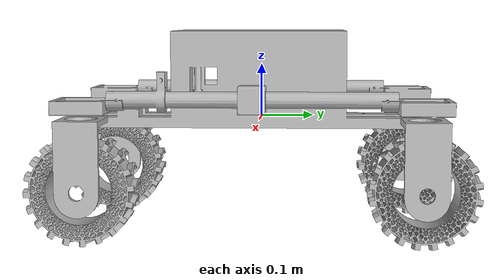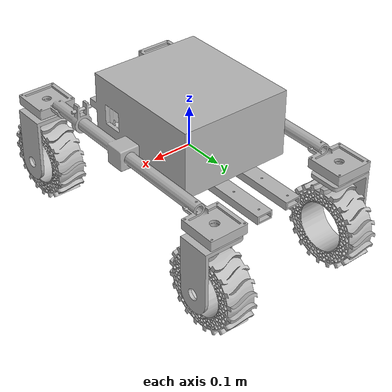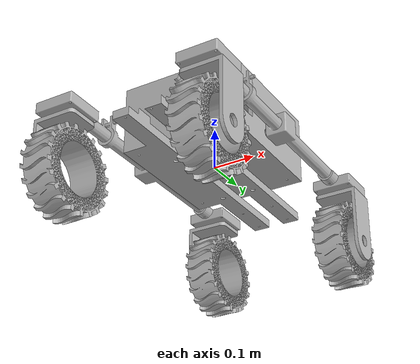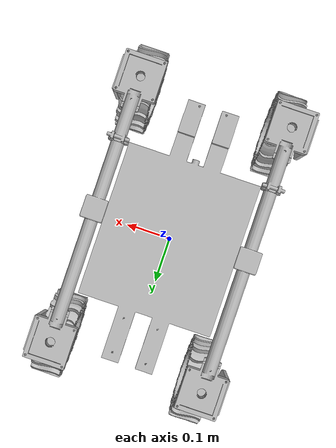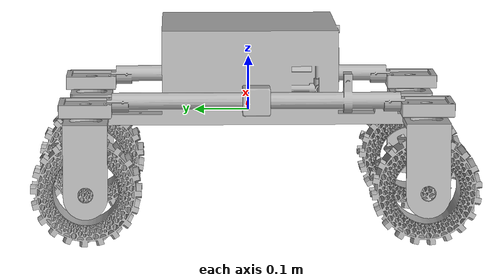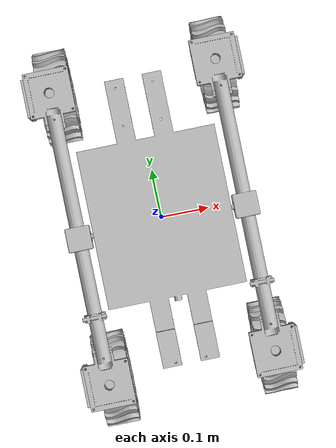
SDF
<sdf version='1.7'>
  <model name='robot_mk2'>
    <link name='base_link'>
      <inertial>
        <pose>-1e-06 -0.01155 0.053193 0 -0 0</pose>
        <mass>5.35852</mass>
        <inertia>
          <ixx>0.0719018</ixx>
          <ixy>-1.24143e-05</ixy>
          <ixz>8.05932e-09</ixz>
          <iyy>0.0809954</iyy>
          <iyz>-6.26768e-07</iyz>
          <izz>0.137156</izz>
        </inertia>
      </inertial>
      <collision name='base_link_collision'>
        <pose>0 0 0 0 -0 0</pose>
        <geometry>
          <mesh>
            <scale>1 1 1</scale>
            <uri>model://rovermk2_description/meshes/base_link.STL</uri>
          </mesh>
        </geometry>
      </collision>
      <collision name='base_link_fixed_joint_lump__suspension_left_collision_1'>
        <pose>-0.175 -0.1 0.043 0 0 -1.5708</pose>
        <geometry>
          <mesh>
            <scale>1 1 1</scale>
            <uri>model://rovermk2_description/meshes/suspension_1.STL</uri>
          </mesh>
        </geometry>
      </collision>
      <collision name='base_link_fixed_joint_lump__suspension_right_collision_2'>
        <pose>0.2225 -0.01 0.043 0 1.8e-05 -1.5708</pose>
        <geometry>
          <mesh>
            <scale>1 1 1</scale>
            <uri>model://rovermk2_description/meshes/suspension_2.STL</uri>
          </mesh>
        </geometry>
      </collision>
      <visual name='base_link_visual'>
        <pose>0 0 0 0 -0 0</pose>
        <geometry>
          <mesh>
            <scale>1 1 1</scale>
            <uri>model://rovermk2_description/meshes/base_link.STL</uri>
          </mesh>
        </geometry>
      </visual>
      <visual name='base_link_fixed_joint_lump__imu_link_visual_1'>
        <pose>0 0 0 0 -0 0</pose>
        <geometry>
          <box>
            <size>0.01 0.01 0.01</size>
          </box>
        </geometry>
      </visual>
      <visual name='base_link_fixed_joint_lump__suspension_left_visual_2'>
        <pose>-0.175 -0.1 0.043 0 0 -1.5708</pose>
        <geometry>
          <mesh>
            <scale>1 1 1</scale>
            <uri>model://rovermk2_description/meshes/suspension_1.STL</uri>
          </mesh>
        </geometry>
      </visual>
      <visual name='base_link_fixed_joint_lump__suspension_right_visual_3'>
        <pose>0.2225 -0.01 0.043 0 1.8e-05 -1.5708</pose>
        <geometry>
          <mesh>
            <scale>1 1 1</scale>
            <uri>model://rovermk2_description/meshes/suspension_2.STL</uri>
          </mesh>
        </geometry>
      </visual>
      <sensor name='imu_sensor' type='imu'>
        <always_on>1</always_on>
        <update_rate>100</update_rate>
        <visualize>1</visualize>
        <topic>imu</topic>
        <pose>0 0 0 0 -0 0</pose>
        <ignition_frame_id>imu_link</ignition_frame_id>
      </sensor>
    </link>
    <joint name='steerBL_joint' type='revolute'>
      <pose relative_to='base_link'>-0.175001 -0.3175 0.008 0 0 -1.5708</pose>
      <parent>base_link</parent>
      <child>steer_BL</child>
      <axis>
        <xyz>0 0 1</xyz>
        <limit>
          <lower>-1e+16</lower>
          <upper>1e+16</upper>
        </limit>
        <dynamics>
          <spring_reference>0</spring_reference>
          <spring_stiffness>0</spring_stiffness>
        </dynamics>
      </axis>
    </joint>
    <link name='steer_BL'>
      <pose relative_to='steerBL_joint'>0 0 0 0 -0 0</pose>
      <inertial>
        <pose>-0 -0.032335 -0.05247 0 -0 0</pose>
        <mass>0.1576</mass>
        <inertia>
          <ixx>0.00057382</ixx>
          <ixy>-9.7292e-20</ixy>
          <ixz>-4.0506e-19</ixz>
          <iyy>0.00051647</iyy>
          <iyz>-0.00013791</iyz>
          <izz>0.00023455</izz>
        </inertia>
      </inertial>
      <collision name='steer_BL_collision'>
        <pose>0 0 0 0 -0 0</pose>
        <geometry>
          <mesh>
            <scale>1 1 1</scale>
            <uri>model://rovermk2_description/meshes/steer_BL.STL</uri>
          </mesh>
        </geometry>
      </collision>
      <visual name='steer_BL_visual'>
        <pose>0 0 0 0 -0 0</pose>
        <geometry>
          <mesh>
            <scale>1 1 1</scale>
            <uri>model://rovermk2_description/meshes/steer_BL.STL</uri>
          </mesh>
        </geometry>
      </visual>
    </link>
    <joint name='wheelBL_joint' type='revolute'>
      <pose relative_to='steer_BL'>0 0.008 -0.127 0 -0.19461 -3.14159</pose>
      <parent>steer_BL</parent>
      <child>wheelBL</child>
      <axis>
        <xyz>0 -1 0</xyz>
        <limit>
          <lower>-1e+16</lower>
          <upper>1e+16</upper>
        </limit>
        <dynamics>
          <spring_reference>0</spring_reference>
          <spring_stiffness>0</spring_stiffness>
        </dynamics>
      </axis>
    </joint>
    <link name='wheelBL'>
      <pose relative_to='wheelBL_joint'>0 0 0 0 -0 0</pose>
      <inertial>
        <pose>-1.5e-05 8e-06 -8e-06 0 -0 0</pose>
        <mass>0.57701</mass>
        <inertia>
          <ixx>0.0021482</ixx>
          <ixy>-3.9981e-08</ixy>
          <ixz>-7.3417e-08</ixz>
          <iyy>0.0038226</iyy>
          <iyz>-2.1036e-08</iyz>
          <izz>0.0021482</izz>
        </inertia>
      </inertial>
      <collision name='wheelBL_collision'>
        <pose>0 0 0 0 -0 0</pose>
        <geometry>
          <mesh>
            <scale>1 1 1</scale>
            <uri>model://rovermk2_description/meshes/wheelBL.STL</uri>
          </mesh>
        </geometry>
      </collision>
      <visual name='wheelBL_visual'>
        <pose>0 0 0 0 -0 0</pose>
        <geometry>
          <mesh>
            <scale>1 1 1</scale>
            <uri>model://rovermk2_description/meshes/wheelBL.STL</uri>
          </mesh>
        </geometry>
      </visual>
    </link>
    <joint name='steerFL_joint' type='revolute'>
      <pose relative_to='base_link'>-0.174999 0.2975 0.008 0 0 -1.5708</pose>
      <parent>base_link</parent>
      <child>steerFL</child>
      <axis>
        <xyz>0 0 1</xyz>
        <limit>
          <lower>-1e+16</lower>
          <upper>1e+16</upper>
        </limit>
        <dynamics>
          <spring_reference>0</spring_reference>
          <spring_stiffness>0</spring_stiffness>
        </dynamics>
      </axis>
    </joint>
    <link name='steerFL'>
      <pose relative_to='steerFL_joint'>0 0 0 0 -0 0</pose>
      <inertial>
        <pose>-0 -0.032335 -0.05247 0 -0 0</pose>
        <mass>0.1576</mass>
        <inertia>
          <ixx>0.00057382</ixx>
          <ixy>7.8164e-19</ixy>
          <ixz>1.4837e-18</ixz>
          <iyy>0.00051647</iyy>
          <iyz>-0.00013791</iyz>
          <izz>0.00023455</izz>
        </inertia>
      </inertial>
      <collision name='steerFL_collision'>
        <pose>0 0 0 0 -0 0</pose>
        <geometry>
          <mesh>
            <scale>1 1 1</scale>
            <uri>model://rovermk2_description/meshes/Steer_FL_1.STL</uri>
          </mesh>
        </geometry>
      </collision>
      <visual name='steerFL_visual'>
        <pose>0 0 0 0 -0 0</pose>
        <geometry>
          <mesh>
            <scale>1 1 1</scale>
            <uri>model://rovermk2_description/meshes/Steer_FL_1.STL</uri>
          </mesh>
        </geometry>
      </visual>
    </link>
    <joint name='wheelFL_joint' type='revolute'>
      <pose relative_to='steerFL'>0 0.008 -0.127 0 -0.031506 -3.14159</pose>
      <parent>steerFL</parent>
      <child>wheelFL</child>
      <axis>
        <xyz>0 -1 0</xyz>
        <limit>
          <lower>-1e+16</lower>
          <upper>1e+16</upper>
        </limit>
        <dynamics>
          <spring_reference>0</spring_reference>
          <spring_stiffness>0</spring_stiffness>
        </dynamics>
      </axis>
    </joint>
    <link name='wheelFL'>
      <pose relative_to='wheelFL_joint'>0 0 0 0 -0 0</pose>
      <inertial>
        <pose>-1.2e-05 1.1e-05 -1e-05 0 -0 0</pose>
        <mass>0.57698</mass>
        <inertia>
          <ixx>0.0021487</ixx>
          <ixy>-1.7024e-08</ixy>
          <ixz>-8.7398e-08</ixz>
          <iyy>0.0038235</iyy>
          <iyz>8.3831e-09</iyz>
          <izz>0.0021487</izz>
        </inertia>
      </inertial>
      <collision name='wheelFL_collision'>
        <pose>0 0 0 0 -0 0</pose>
        <geometry>
          <mesh>
            <scale>1 1 1</scale>
            <uri>model://rovermk2_description/meshes/wheelFL.STL</uri>
          </mesh>
        </geometry>
      </collision>
      <visual name='wheelFL_visual'>
        <pose>0 0 0 0 -0 0</pose>
        <geometry>
          <mesh>
            <scale>1 1 1</scale>
            <uri>model://rovermk2_description/meshes/wheelFL.STL</uri>
          </mesh>
        </geometry>
      </visual>
    </link>
    <joint name='steerBR_joint' type='revolute'>
      <pose relative_to='base_link'>0.229263 -0.01 0.043199 -0 -1.8e-05 1.5708</pose>
      <parent>base_link</parent>
      <child>steer_BR</child>
      <axis>
        <xyz>6e-05 0 1</xyz>
        <limit>
          <lower>-1e+16</lower>
          <upper>1e+16</upper>
        </limit>
        <dynamics>
          <spring_reference>0</spring_reference>
          <spring_stiffness>0</spring_stiffness>
        </dynamics>
      </axis>
    </joint>
    <link name='steer_BR'>
      <pose relative_to='steerBR_joint'>0 0 0 0 -0 0</pose>
      <inertial>
        <pose>-0.30751 0.021928 -0.087669 0 -0 0</pose>
        <mass>0.1576</mass>
        <inertia>
          <ixx>0.00057382</ixx>
          <ixy>-5.2157e-17</ixy>
          <ixz>-1.2839e-16</ixz>
          <iyy>0.00051647</iyy>
          <iyz>-0.00013791</iyz>
          <izz>0.00023455</izz>
        </inertia>
      </inertial>
      <collision name='steer_BR_collision'>
        <pose>0 0 0 0 -0 0</pose>
        <geometry>
          <mesh>
            <scale>1 1 1</scale>
            <uri>model://rovermk2_description/meshes/steer_BR.STL</uri>
          </mesh>
        </geometry>
      </collision>
      <visual name='steer_BR_visual'>
        <pose>0 0 0 0 -0 0</pose>
        <geometry>
          <mesh>
            <scale>1 1 1</scale>
            <uri>model://rovermk2_description/meshes/steer_BR.STL</uri>
          </mesh>
        </geometry>
      </visual>
    </link>
    <joint name='wheelBR_joint' type='revolute'>
      <pose relative_to='steer_BR'>-0.30751 0.052263 -0.1622 0 -0.069204 0</pose>
      <parent>steer_BR</parent>
      <child>wheelBR</child>
      <axis>
        <xyz>0 -1 0</xyz>
        <limit>
          <lower>-1e+16</lower>
          <upper>1e+16</upper>
        </limit>
        <dynamics>
          <spring_reference>0</spring_reference>
          <spring_stiffness>0</spring_stiffness>
        </dynamics>
      </axis>
    </joint>
    <link name='wheelBR'>
      <pose relative_to='wheelBR_joint'>0 0 0 0 -0 0</pose>
      <inertial>
        <pose>-1.3e-05 1e-05 -9e-06 0 -0 0</pose>
        <mass>0.577</mass>
        <inertia>
          <ixx>0.0021487</ixx>
          <ixy>-1.7024e-08</ixy>
          <ixz>-8.7398e-08</ixz>
          <iyy>0.0038235</iyy>
          <iyz>8.3831e-09</iyz>
          <izz>0.0021487</izz>
        </inertia>
      </inertial>
      <collision name='wheelBR_collision'>
        <pose>0 0 0 0 -0 0</pose>
        <geometry>
          <mesh>
            <scale>1 1 1</scale>
            <uri>model://rovermk2_description/meshes/wheelBR.STL</uri>
          </mesh>
        </geometry>
      </collision>
      <visual name='wheelBR_visual'>
        <pose>0 0 0 0 -0 0</pose>
        <geometry>
          <mesh>
            <scale>1 1 1</scale>
            <uri>model://rovermk2_description/meshes/wheelBR.STL</uri>
          </mesh>
        </geometry>
      </visual>
    </link>
    <joint name='steerFR_joint' type='revolute'>
      <pose relative_to='base_link'>0.2325 -0.01 0.043 -0 -1.8e-05 1.5708</pose>
      <parent>base_link</parent>
      <child>steer_FR</child>
      <axis>
        <xyz>6e-05 0 1</xyz>
        <limit>
          <lower>-1e+16</lower>
          <upper>1e+16</upper>
        </limit>
        <dynamics>
          <spring_reference>0</spring_reference>
          <spring_stiffness>0</spring_stiffness>
        </dynamics>
      </axis>
    </joint>
    <link name='steer_FR'>
      <pose relative_to='steerFR_joint'>0 0 0 0 -0 0</pose>
      <inertial>
        <pose>0.3075 0.025165 -0.08747 0 -0 0</pose>
        <mass>0.1576</mass>
        <inertia>
          <ixx>0.00057382</ixx>
          <ixy>-5.4704e-17</ixy>
          <ixz>-1.3425e-16</ixz>
          <iyy>0.00051647</iyy>
          <iyz>-0.00013791</iyz>
          <izz>0.00023455</izz>
        </inertia>
      </inertial>
      <collision name='steer_FR_collision'>
        <pose>0 0 0 0 -0 0</pose>
        <geometry>
          <mesh>
            <scale>1 1 1</scale>
            <uri>model://rovermk2_description/meshes/steer_FR.STL</uri>
          </mesh>
        </geometry>
      </collision>
      <visual name='steer_FR_visual'>
        <pose>0 0 0 0 -0 0</pose>
        <geometry>
          <mesh>
            <scale>1 1 1</scale>
            <uri>model://rovermk2_description/meshes/steer_FR.STL</uri>
          </mesh>
        </geometry>
      </visual>
    </link>
    <joint name='wheelFR_joint' type='revolute'>
      <pose relative_to='steer_FR'>0.3075 0.0555 -0.162 0 -0.48916 0</pose>
      <parent>steer_FR</parent>
      <child>wheelFR</child>
      <axis>
        <xyz>0 -1 0</xyz>
        <limit>
          <lower>-1e+16</lower>
          <upper>1e+16</upper>
        </limit>
        <dynamics>
          <spring_reference>0</spring_reference>
          <spring_stiffness>0</spring_stiffness>
        </dynamics>
      </axis>
    </joint>
    <link name='wheelFR'>
      <pose relative_to='wheelFR_joint'>0 0 0 0 -0 0</pose>
      <inertial>
        <pose>-1.5e-05 8e-06 -7e-06 0 -0 0</pose>
        <mass>0.57701</mass>
        <inertia>
          <ixx>0.0021486</ixx>
          <ixy>-4.1925e-08</ixy>
          <ixz>-2.4022e-08</ixz>
          <iyy>0.0038235</iyy>
          <iyz>-1.3635e-08</iyz>
          <izz>0.0021489</izz>
        </inertia>
      </inertial>
      <collision name='wheelFR_collision'>
        <pose>0 0 0 0 -0 0</pose>
        <geometry>
          <mesh>
            <scale>1 1 1</scale>
            <uri>model://rovermk2_description/meshes/wheelFR.STL</uri>
          </mesh>
        </geometry>
      </collision>
      <visual name='wheelFR_visual'>
        <pose>0 0 0 0 -0 0</pose>
        <geometry>
          <mesh>
            <scale>1 1 1</scale>
            <uri>model://rovermk2_description/meshes/wheelFR.STL</uri>
          </mesh>
        </geometry>
      </visual>
    </link>
    <static>0</static>
    <plugin name='gz_ros2_control::GazeboSimROS2ControlPlugin' filename='libgz_ros2_control-system.so'>
      <parameters>/home/arpit/urdf_ws/install/rovermk2_description/share/rovermk2_description/config/controller.yaml</parameters>
    </plugin>
  </model>
</sdf>
